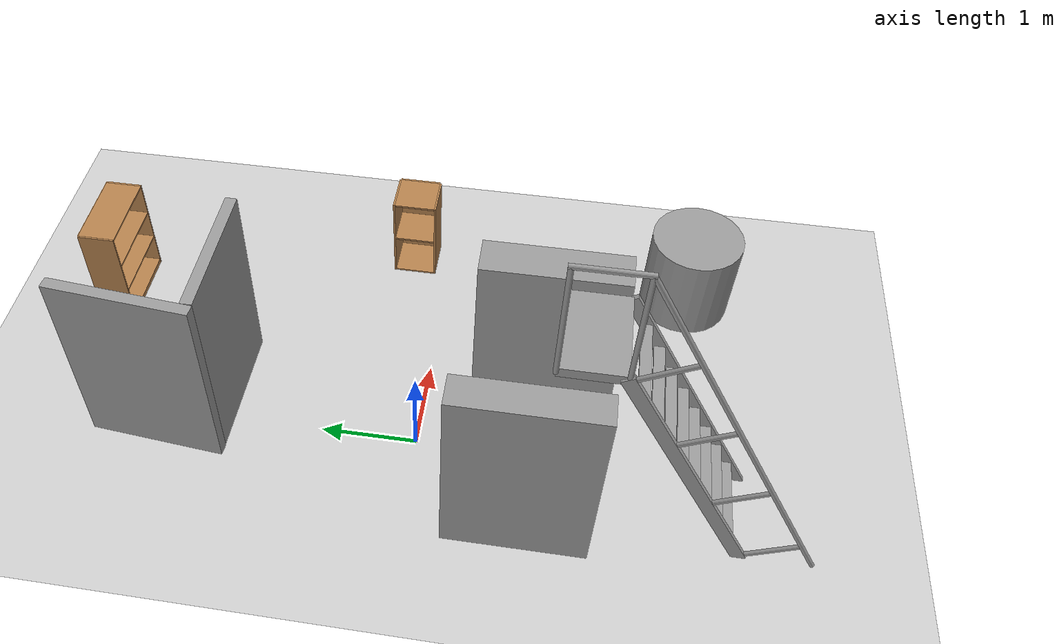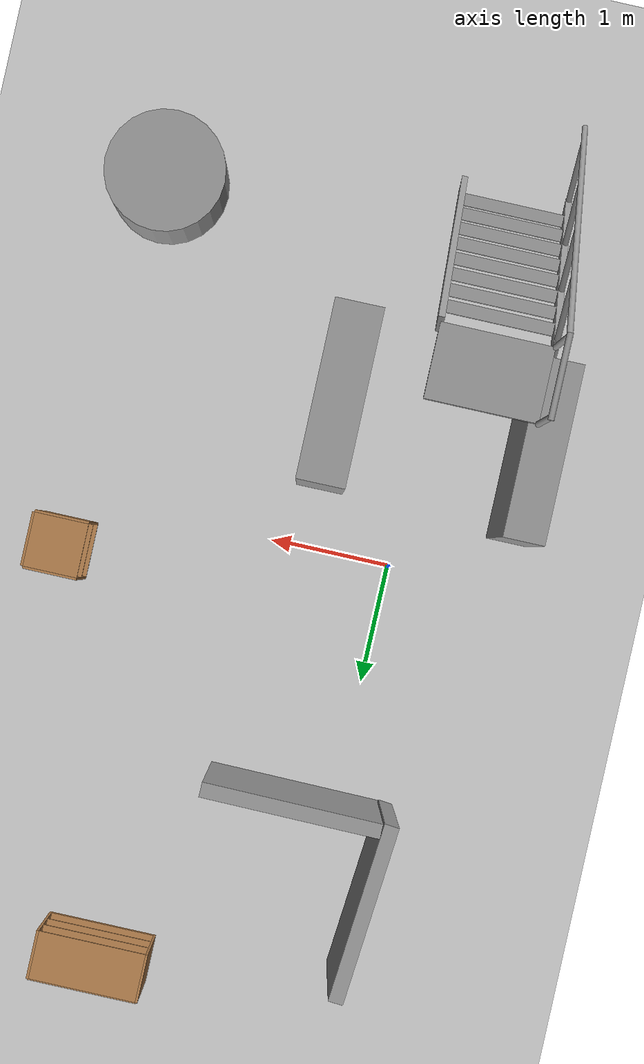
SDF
<sdf version="1.6">
 <world name="default">
  <light name="sun" type="directional">
   <pose>0 0 10 0 -0 0</pose>
   <diffuse>0.8 0.8 0.8 1</diffuse>
   <specular>0.2 0.2 0.2 1</specular>
   <attenuation>
    <range>1000</range>
    <constant>0.9</constant>
    <linear>0.01</linear>
    <quadratic>0.001</quadratic>
   </attenuation>
   <direction>-0.5 0.1 -0.9</direction>
  </light>
  <model name="ground_plane">
   <static>1</static>
   <link name="link">
    <collision name="collision">
     <geometry><plane><normal>0 0 1</normal><size>100 100</size></plane></geometry>
     <surface>
      <contact><collide_bitmask>65535</collide_bitmask></contact>
      <friction><ode><mu>100</mu><mu2>50</mu2></ode></friction>
     </surface>
    </collision>
    <visual name="visual">
     <cast_shadows>0</cast_shadows>
     <geometry><plane><normal>0 0 1</normal><size>100 100</size></plane></geometry>
     <material>
      <script><uri>file://media/materials/scripts/gazebo.material</uri><name>Gazebo/Grey</name></script>
     </material>
    </visual>
   </link>
  </model>
  <gravity>0 0 -9.8</gravity>
  <magnetic_field>6e-06 2.3e-05 -4.2e-05</magnetic_field>
  <atmosphere type="adiabatic"/>
  <physics name="default_physics" default="0" type="ode">
   <max_step_size>0.001</max_step_size>
   <real_time_factor>1</real_time_factor>
   <real_time_update_rate>1000</real_time_update_rate>
  </physics>
  <scene><ambient>0.4 0.4 0.4 1</ambient><background>0.7 0.7 0.7 1</background><shadows>1</shadows></scene>
  <spherical_coordinates>
   <surface_model>EARTH_WGS84</surface_model>
   <latitude_deg>0</latitude_deg>
   <longitude_deg>0</longitude_deg>
   <elevation>0</elevation>
   <heading_deg>0</heading_deg>
  </spherical_coordinates>
  <model name="unit_box_clone">
   <pose>0.704286 -1.22458 1.06821 5e-06 -1e-06 0.004235</pose>
   <link name="link">
    <inertial>
     <mass>1</mass>
     <inertia>
      <ixx>0.166667</ixx>
      <ixy>0</ixy>
      <ixz>0</ixz>
      <iyy>0.166667</iyy>
      <iyz>0</iyz>
      <izz>0.166667</izz>
     </inertia>
    </inertial>
    <collision name="collision"><geometry><box><size>0.395099 1.43862 2.13642</size></box></geometry></collision>
    <visual name="visual">
     <geometry><box><size>0.395099 1.43862 2.13642</size></box></geometry>
     <material>
      <script><name>Gazebo/Grey</name><uri>file://media/materials/scripts/gazebo.material</uri></script>
     </material>
    </visual>
   </link>
  </model>
  <model name="unit_box_clone_0">
   <pose>-0.35745 2.67347 1.06821 -1e-06 -0 -0.090035</pose>
   <link name="link">
    <inertial>
     <mass>1</mass>
     <inertia>
      <ixx>0.166667</ixx>
      <ixy>0</ixy>
      <ixz>0</ixz>
      <iyy>0.166667</iyy>
      <iyz>0</iyz>
      <izz>0.166667</izz>
     </inertia>
    </inertial>
    <collision name="collision"><geometry><box><size>0.119787 1.43862 2.13642</size></box></geometry></collision>
    <visual name="visual">
     <geometry><box><size>0.119787 1.43862 2.13642</size></box></geometry>
     <material>
      <script><name>Gazebo/Grey</name><uri>file://media/materials/scripts/gazebo.material</uri></script>
     </material>
    </visual>
   </link>
  </model>
  <model name="bookshelf">
   <static>1</static>
   <link name="link">
    <inertial><mass>1</mass></inertial>
    <collision name="back">
     <pose>0 0.005 0.6 0 -0 0</pose>
     <geometry><box><size>0.9 0.01 1.2</size></box></geometry>
    </collision>
    <visual name="visual1">
     <pose>0 0.005 0.6 0 -0 0</pose>
     <geometry><box><size>0.9 0.01 1.2</size></box></geometry>
     <material>
      <script><uri>file://media/materials/scripts/gazebo.material</uri><name>Gazebo/Wood</name></script>
     </material>
    </visual>
    <collision name="left_side">
     <pose>0.45 -0.195 0.6 0 -0 0</pose>
     <geometry><box><size>0.02 0.4 1.2</size></box></geometry>
    </collision>
    <visual name="visual2">
     <pose>0.45 -0.195 0.6 0 -0 0</pose>
     <geometry><box><size>0.02 0.4 1.2</size></box></geometry>
     <material>
      <script><uri>file://media/materials/scripts/gazebo.material</uri><name>Gazebo/Wood</name></script>
     </material>
    </visual>
    <collision name="right_side">
     <pose>-0.45 -0.195 0.6 0 -0 0</pose>
     <geometry><box><size>0.02 0.4 1.2</size></box></geometry>
    </collision>
    <visual name="visual3">
     <pose>-0.45 -0.195 0.6 0 -0 0</pose>
     <geometry><box><size>0.02 0.4 1.2</size></box></geometry>
     <material>
      <script><uri>file://media/materials/scripts/gazebo.material</uri><name>Gazebo/Wood</name></script>
     </material>
    </visual>
    <collision name="bottom">
     <pose>0 -0.195 0.03 0 -0 0</pose>
     <geometry><box><size>0.88 0.4 0.06</size></box></geometry>
    </collision>
    <visual name="visual4">
     <pose>0 -0.195 0.03 0 -0 0</pose>
     <geometry><box><size>0.88 0.4 0.06</size></box></geometry>
     <material>
      <script><uri>file://media/materials/scripts/gazebo.material</uri><name>Gazebo/Wood</name></script>
     </material>
    </visual>
    <collision name="top">
     <pose>0 -0.195 1.19 0 -0 0</pose>
     <geometry><box><size>0.88 0.4 0.02</size></box></geometry>
    </collision>
    <visual name="visual5">
     <pose>0 -0.195 1.19 0 -0 0</pose>
     <geometry><box><size>0.88 0.4 0.02</size></box></geometry>
     <material>
      <script><uri>file://media/materials/scripts/gazebo.material</uri><name>Gazebo/Wood</name></script>
     </material>
    </visual>
    <collision name="low_shelf">
     <pose>0 -0.195 0.43 0 -0 0</pose>
     <geometry><box><size>0.88 0.4 0.02</size></box></geometry>
    </collision>
    <visual name="visual6">
     <pose>0 -0.195 0.43 0 -0 0</pose>
     <geometry><box><size>0.88 0.4 0.02</size></box></geometry>
     <material>
      <script><uri>file://media/materials/scripts/gazebo.material</uri><name>Gazebo/Wood</name></script>
     </material>
    </visual>
    <collision name="high_shelf">
     <pose>0 -0.195 0.8 0 -0 0</pose>
     <geometry><box><size>0.88 0.4 0.02</size></box></geometry>
    </collision>
    <visual name="visual7">
     <pose>0 -0.195 0.8 0 -0 0</pose>
     <geometry><box><size>0.88 0.4 0.02</size></box></geometry>
     <material>
      <script><uri>file://media/materials/scripts/gazebo.material</uri><name>Gazebo/Wood</name></script>
     </material>
    </visual>
   </link>
   <pose>1.68465 3.8813 0 0 -0 0</pose>
  </model>
  <model name="unit_cylinder">
   <pose>2.49443 -2.7439 0.499996 3e-06 1e-06 -0</pose>
   <link name="link">
    <inertial>
     <mass>1</mass>
     <inertia><ixx>0.145833</ixx><ixy>0</ixy><ixz>0</ixz><iyy>0.145833</iyy><iyz>0</iyz><izz>0.125</izz></inertia>
    </inertial>
    <collision name="collision">
     <geometry><cylinder><radius>0.5</radius><length>1</length></cylinder></geometry>
    </collision>
    <visual name="visual">
     <geometry><cylinder><radius>0.5</radius><length>1</length></cylinder></geometry>
     <material>
      <script><name>Gazebo/Grey</name><uri>file://media/materials/scripts/gazebo.material</uri></script>
     </material>
    </visual>
   </link>
  </model>
  <model name="unit_box_clone_0_clone">
   <pose>0.368051 2.01107 1.06821 4e-06 1e-06 -1.58001</pose>
   <link name="link">
    <inertial>
     <mass>1</mass>
     <inertia>
      <ixx>0.166667</ixx>
      <ixy>0</ixy>
      <ixz>0</ixz>
      <iyy>0.166667</iyy>
      <iyz>0</iyz>
      <izz>0.166667</izz>
     </inertia>
    </inertial>
    <collision name="collision"><geometry><box><size>0.119787 1.43862 2.13642</size></box></geometry></collision>
    <visual name="visual">
     <geometry><box><size>0.119787 1.43862 2.13642</size></box></geometry>
     <material>
      <script><name>Gazebo/Grey</name><uri>file://media/materials/scripts/gazebo.material</uri></script>
     </material>
    </visual>
   </link>
  </model>
  <model name="unit_box_clone_clone">
   <pose>-0.931241 -1.13252 1.0682 -3e-06 -0 0.002083</pose>
   <link name="link">
    <inertial>
     <mass>1</mass>
     <inertia>
      <ixx>0.166667</ixx>
      <ixy>0</ixy>
      <ixz>0</ixz>
      <iyy>0.166667</iyy>
      <iyz>0</iyz>
      <izz>0.166667</izz>
     </inertia>
    </inertial>
    <collision name="collision"><geometry><box><size>0.334981 1.43862 2.13642</size></box></geometry></collision>
    <visual name="visual">
     <geometry><box><size>0.334981 1.43862 2.13642</size></box></geometry>
     <material>
      <script><name>Gazebo/Grey</name><uri>file://media/materials/scripts/gazebo.material</uri></script>
     </material>
    </visual>
   </link>
  </model>
  <model name="cabinet">
   <static>1</static>
   <link name="cabinet_bottom_plate">
    <inertial>
     <pose>0 0 -1 0 -0 0</pose>
     <inertia><ixx>2.05</ixx><ixy>0</ixy><ixz>0</ixz><iyy>2.05</iyy><iyz>0</iyz><izz>2.05</izz></inertia>
     <mass>25</mass>
    </inertial>
    <collision name="cabinet_bottom_plate_geom">
     <pose>0 0 0.01 0 -0 0</pose>
     <geometry><box><size>0.45 0.45 0.02</size></box></geometry>
    </collision>
    <visual name="cabinet_bottom_plate_geom_visual">
     <pose>0 0 0.01 0 -0 0</pose>
     <geometry><box><size>0.45 0.45 0.02</size></box></geometry>
     <material>
      <script><uri>file://media/materials/scripts/gazebo.material</uri><name>Gazebo/Wood</name></script>
     </material>
    </visual>
    <collision name="cabinet_bottom_plate_geom_cabinet_back_plate">
     <pose>0.235 0 0.51 0 -0 0</pose>
     <geometry><box><size>0.02 0.45 1.02</size></box></geometry>
    </collision>
    <visual name="cabinet_bottom_plate_geom_cabinet_back_plate_visual">
     <pose>0.235 0 0.51 0 -0 0</pose>
     <geometry><box><size>0.02 0.45 1.02</size></box></geometry>
     <material>
      <script><uri>file://media/materials/scripts/gazebo.material</uri><name>Gazebo/Wood</name></script>
     </material>
    </visual>
    <collision name="cabinet_bottom_plate_geom_cabinet_left_plate">
     <pose>0 0.235 0.51 0 -0 0</pose>
     <geometry><box><size>0.45 0.02 1.02</size></box></geometry>
    </collision>
    <visual name="cabinet_bottom_plate_geom_cabinet_left_plate_visual">
     <pose>0 0.235 0.51 0 -0 0</pose>
     <geometry><box><size>0.45 0.02 1.02</size></box></geometry>
     <material>
      <script><uri>file://media/materials/scripts/gazebo.material</uri><name>Gazebo/Wood</name></script>
     </material>
    </visual>
    <collision name="cabinet_bottom_plate_geom_cabinet_middle_plate">
     <pose>0 0 0.51 0 -0 0</pose>
     <geometry><box><size>0.45 0.45 0.02</size></box></geometry>
    </collision>
    <visual name="cabinet_bottom_plate_geom_cabinet_middle_plate_visual">
     <pose>0 0 0.51 0 -0 0</pose>
     <geometry><box><size>0.45 0.45 0.02</size></box></geometry>
     <material>
      <script><uri>file://media/materials/scripts/gazebo.material</uri><name>Gazebo/Wood</name></script>
     </material>
    </visual>
    <collision name="cabinet_bottom_plate_geom_cabinet_right_plate">
     <pose>0 -0.235 0.51 0 -0 0</pose>
     <geometry><box><size>0.45 0.02 1.02</size></box></geometry>
    </collision>
    <visual name="cabinet_bottom_plate_geom_cabinet_right_plate_visual">
     <pose>0 -0.235 0.51 0 -0 0</pose>
     <geometry><box><size>0.45 0.02 1.02</size></box></geometry>
     <material>
      <script><uri>file://media/materials/scripts/gazebo.material</uri><name>Gazebo/Wood</name></script>
     </material>
    </visual>
    <collision name="cabinet_bottom_plate_geom_cabinet_top_plate">
     <pose>0 0 1.01 0 -0 0</pose>
     <geometry><box><size>0.45 0.45 0.02</size></box></geometry>
    </collision>
    <visual name="cabinet_bottom_plate_geom_cabinet_top_plate_visual">
     <pose>0 0 1.01 0 -0 0</pose>
     <geometry><box><size>0.45 0.45 0.02</size></box></geometry>
     <material>
      <script><uri>file://media/materials/scripts/gazebo.material</uri><name>Gazebo/Wood</name></script>
     </material>
    </visual>
   </link>
   <pose>2.69097 0.425055 0 0 -0 0</pose>
  </model>
  <model name="ladder_60deg_1rails">
   <static>1</static>
   <link name="step0">
    <pose>0 0.15396 0.266667 0 -0 0</pose>
    <inertial>
     <mass>9.75482</mass>
     <inertia>
      <ixx>0.00957124</ixx>
      <iyy>0.65963</iyy>
      <izz>0.666842</izz>
      <ixy>0</ixy>
      <ixz>0</ixz>
      <iyz>0</iyz>
     </inertia>
    </inertial>
    <collision name="collision"><geometry><box><size>0.9 0.1016 0.0381</size></box></geometry></collision>
    <visual name="visual">
     <geometry><box><size>0.9 0.1016 0.0381</size></box></geometry>
     <material>
      <script><uri>file://media/materials/scripts/gazebo.material</uri><name>Gazebo/Grey</name></script>
     </material>
    </visual>
   </link>
   <link name="step1">
    <pose>0 0.30792 0.533333 0 -0 0</pose>
    <inertial>
     <mass>9.75482</mass>
     <inertia>
      <ixx>0.00957124</ixx>
      <iyy>0.65963</iyy>
      <izz>0.666842</izz>
      <ixy>0</ixy>
      <ixz>0</ixz>
      <iyz>0</iyz>
     </inertia>
    </inertial>
    <collision name="collision"><geometry><box><size>0.9 0.1016 0.0381</size></box></geometry></collision>
    <visual name="visual">
     <geometry><box><size>0.9 0.1016 0.0381</size></box></geometry>
     <material>
      <script><uri>file://media/materials/scripts/gazebo.material</uri><name>Gazebo/Grey</name></script>
     </material>
    </visual>
   </link>
   <link name="step2">
    <pose>0 0.46188 0.8 0 -0 0</pose>
    <inertial>
     <mass>9.75482</mass>
     <inertia>
      <ixx>0.00957124</ixx>
      <iyy>0.65963</iyy>
      <izz>0.666842</izz>
      <ixy>0</ixy>
      <ixz>0</ixz>
      <iyz>0</iyz>
     </inertia>
    </inertial>
    <collision name="collision"><geometry><box><size>0.9 0.1016 0.0381</size></box></geometry></collision>
    <visual name="visual">
     <geometry><box><size>0.9 0.1016 0.0381</size></box></geometry>
     <material>
      <script><uri>file://media/materials/scripts/gazebo.material</uri><name>Gazebo/Grey</name></script>
     </material>
    </visual>
   </link>
   <link name="step3">
    <pose>0 0.61584 1.06667 0 -0 0</pose>
    <inertial>
     <mass>9.75482</mass>
     <inertia>
      <ixx>0.00957124</ixx>
      <iyy>0.65963</iyy>
      <izz>0.666842</izz>
      <ixy>0</ixy>
      <ixz>0</ixz>
      <iyz>0</iyz>
     </inertia>
    </inertial>
    <collision name="collision"><geometry><box><size>0.9 0.1016 0.0381</size></box></geometry></collision>
    <visual name="visual">
     <geometry><box><size>0.9 0.1016 0.0381</size></box></geometry>
     <material>
      <script><uri>file://media/materials/scripts/gazebo.material</uri><name>Gazebo/Grey</name></script>
     </material>
    </visual>
   </link>
   <link name="step4">
    <pose>0 0.7698 1.33333 0 -0 0</pose>
    <inertial>
     <mass>9.75482</mass>
     <inertia>
      <ixx>0.00957124</ixx>
      <iyy>0.65963</iyy>
      <izz>0.666842</izz>
      <ixy>0</ixy>
      <ixz>0</ixz>
      <iyz>0</iyz>
     </inertia>
    </inertial>
    <collision name="collision"><geometry><box><size>0.9 0.1016 0.0381</size></box></geometry></collision>
    <visual name="visual">
     <geometry><box><size>0.9 0.1016 0.0381</size></box></geometry>
     <material>
      <script><uri>file://media/materials/scripts/gazebo.material</uri><name>Gazebo/Grey</name></script>
     </material>
    </visual>
   </link>
   <link name="step5">
    <pose>0 0.92376 1.6 0 -0 0</pose>
    <inertial>
     <mass>9.75482</mass>
     <inertia>
      <ixx>0.00957124</ixx>
      <iyy>0.65963</iyy>
      <izz>0.666842</izz>
      <ixy>0</ixy>
      <ixz>0</ixz>
      <iyz>0</iyz>
     </inertia>
    </inertial>
    <collision name="collision"><geometry><box><size>0.9 0.1016 0.0381</size></box></geometry></collision>
    <visual name="visual">
     <geometry><box><size>0.9 0.1016 0.0381</size></box></geometry>
     <material>
      <script><uri>file://media/materials/scripts/gazebo.material</uri><name>Gazebo/Grey</name></script>
     </material>
    </visual>
   </link>
   <link name="step6">
    <pose>0 1.07772 1.86667 0 -0 0</pose>
    <inertial>
     <mass>9.75482</mass>
     <inertia>
      <ixx>0.00957124</ixx>
      <iyy>0.65963</iyy>
      <izz>0.666842</izz>
      <ixy>0</ixy>
      <ixz>0</ixz>
      <iyz>0</iyz>
     </inertia>
    </inertial>
    <collision name="collision"><geometry><box><size>0.9 0.1016 0.0381</size></box></geometry></collision>
    <visual name="visual">
     <geometry><box><size>0.9 0.1016 0.0381</size></box></geometry>
     <material>
      <script><uri>file://media/materials/scripts/gazebo.material</uri><name>Gazebo/Grey</name></script>
     </material>
    </visual>
   </link>
   <link name="step7">
    <pose>0 1.23168 2.13333 0 -0 0</pose>
    <inertial>
     <mass>9.75482</mass>
     <inertia>
      <ixx>0.00957124</ixx>
      <iyy>0.65963</iyy>
      <izz>0.666842</izz>
      <ixy>0</ixy>
      <ixz>0</ixz>
      <iyz>0</iyz>
     </inertia>
    </inertial>
    <collision name="collision"><geometry><box><size>0.9 0.1016 0.0381</size></box></geometry></collision>
    <visual name="visual">
     <geometry><box><size>0.9 0.1016 0.0381</size></box></geometry>
     <material>
      <script><uri>file://media/materials/scripts/gazebo.material</uri><name>Gazebo/Grey</name></script>
     </material>
    </visual>
   </link>
   <link name="landing">
    <pose>0 1.68564 2.4 0 -0 0</pose>
    <inertial>
     <mass>57.6072</mass>
     <inertia><ixx>1.73518</ixx><iyy>3.89545</iyy><izz>5.6167</izz><ixy>0</ixy><ixz>0</ixz><iyz>0</iyz></inertia>
    </inertial>
    <collision name="collision"><geometry><box><size>0.9 0.6 0.1016</size></box></geometry></collision>
    <visual name="visual">
     <geometry><box><size>0.9 0.6 0.1016</size></box></geometry>
     <material>
      <script><uri>file://media/materials/scripts/gazebo.material</uri><name>Gazebo/Grey</name></script>
     </material>
    </visual>
   </link>
   <link name="left_side_wall">
    <pose>-0.45 0.69282 1.2 1.0472 -0 0</pose>
    <collision name="collision"><geometry><box><size>0.0508 2.85128 0.13</size></box></geometry></collision>
    <visual name="visual">
     <geometry><box><size>0.0508 2.85128 0.13</size></box></geometry>
     <material>
      <script><uri>file://media/materials/scripts/gazebo.material</uri><name>Gazebo/Grey</name></script>
     </material>
    </visual>
   </link>
   <link name="right_side_wall">
    <pose>0.45 0.69282 1.2 1.0472 -0 0</pose>
    <collision name="collision"><geometry><box><size>0.0508 2.85128 0.13</size></box></geometry></collision>
    <visual name="visual">
     <geometry><box><size>0.0508 2.85128 0.13</size></box></geometry>
     <material>
      <script><uri>file://media/materials/scripts/gazebo.material</uri><name>Gazebo/Grey</name></script>
     </material>
    </visual>
   </link>
   <link name="left_railing_long">
    <pose>-0.45 0.34282 1.80622 -0.523599 0 0</pose>
    <collision name="collision">
     <geometry><cylinder><radius>0.02413</radius><length>4.17128</length></cylinder></geometry>
    </collision>
    <visual name="visual">
     <geometry><cylinder><radius>0.02413</radius><length>4.17128</length></cylinder></geometry>
     <material>
      <script><uri>file://media/materials/scripts/gazebo.material</uri><name>Gazebo/Grey</name></script>
     </material>
    </visual>
   </link>
   <link name="left_railing_upright0">
    <pose>-0.45 -0.274963 0.15875 1.0472 -0 0</pose>
    <collision name="collision">
     <geometry><cylinder><radius>0.02413</radius><length>0.541218</length></cylinder></geometry>
    </collision>
    <visual name="visual">
     <geometry><cylinder><radius>0.02413</radius><length>0.541218</length></cylinder></geometry>
     <material>
      <script><uri>file://media/materials/scripts/gazebo.material</uri><name>Gazebo/Grey</name></script>
     </material>
    </visual>
   </link>
   <link name="left_railing_upright1">
    <pose>-0.45 0.186917 0.95875 1.0472 -0 0</pose>
    <collision name="collision">
     <geometry><cylinder><radius>0.02413</radius><length>0.541218</length></cylinder></geometry>
    </collision>
    <visual name="visual">
     <geometry><cylinder><radius>0.02413</radius><length>0.541218</length></cylinder></geometry>
     <material>
      <script><uri>file://media/materials/scripts/gazebo.material</uri><name>Gazebo/Grey</name></script>
     </material>
    </visual>
   </link>
   <link name="left_railing_upright2">
    <pose>-0.45 0.648797 1.75875 1.0472 -0 0</pose>
    <collision name="collision">
     <geometry><cylinder><radius>0.02413</radius><length>0.541218</length></cylinder></geometry>
    </collision>
    <visual name="visual">
     <geometry><cylinder><radius>0.02413</radius><length>0.541218</length></cylinder></geometry>
     <material>
      <script><uri>file://media/materials/scripts/gazebo.material</uri><name>Gazebo/Grey</name></script>
     </material>
    </visual>
   </link>
   <link name="left_railing_upright3">
    <pose>-0.45 1.11068 2.55875 1.0472 -0 0</pose>
    <collision name="collision">
     <geometry><cylinder><radius>0.02413</radius><length>0.541218</length></cylinder></geometry>
    </collision>
    <visual name="visual">
     <geometry><cylinder><radius>0.02413</radius><length>0.541218</length></cylinder></geometry>
     <material>
      <script><uri>file://media/materials/scripts/gazebo.material</uri><name>Gazebo/Grey</name></script>
     </material>
    </visual>
   </link>
   <link name="left_railing_landing_top">
    <pose>-0.45 1.68564 3.61244 1.5708 -0 0</pose>
    <collision name="collision">
     <geometry><cylinder><radius>0.02413</radius><length>0.64826</length></cylinder></geometry>
    </collision>
    <visual name="visual">
     <geometry><cylinder><radius>0.02413</radius><length>0.64826</length></cylinder></geometry>
     <material>
      <script><uri>file://media/materials/scripts/gazebo.material</uri><name>Gazebo/Grey</name></script>
     </material>
    </visual>
   </link>
   <link name="left_railing_landing_upright_0">
    <pose>-0.45 1.38564 3.00622 0 -0 0</pose>
    <collision name="collision">
     <geometry><cylinder><radius>0.02413</radius><length>1.21244</length></cylinder></geometry>
    </collision>
    <visual name="visual">
     <geometry><cylinder><radius>0.02413</radius><length>1.21244</length></cylinder></geometry>
     <material>
      <script><uri>file://media/materials/scripts/gazebo.material</uri><name>Gazebo/Grey</name></script>
     </material>
    </visual>
   </link>
   <link name="left_railing_landing_upright_1">
    <pose>-0.45 1.98564 3.00622 0 -0 0</pose>
    <collision name="collision">
     <geometry><cylinder><radius>0.02413</radius><length>1.21244</length></cylinder></geometry>
    </collision>
    <visual name="visual">
     <geometry><cylinder><radius>0.02413</radius><length>1.21244</length></cylinder></geometry>
     <material>
      <script><uri>file://media/materials/scripts/gazebo.material</uri><name>Gazebo/Grey</name></script>
     </material>
    </visual>
   </link>
   <pose>-0.373851 -3.29279 0 0 -0 0</pose>
  </model>
 </world>
</sdf>
